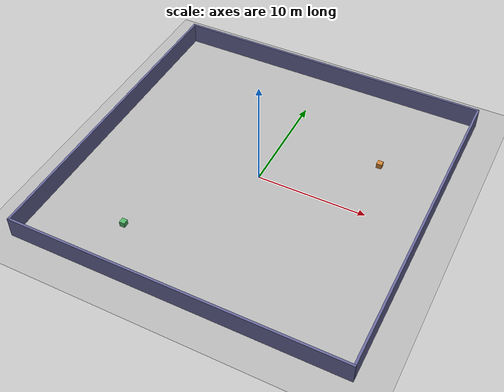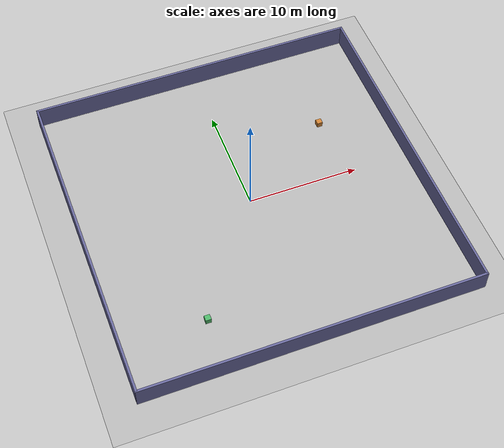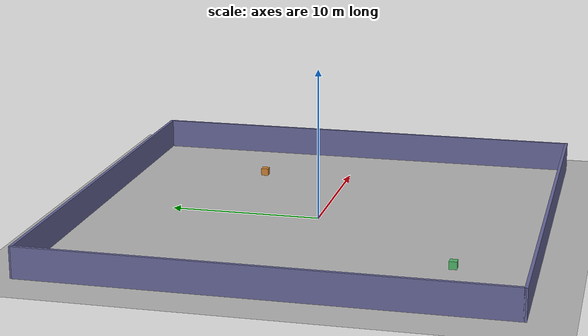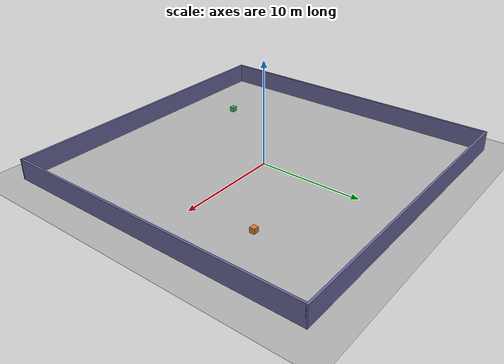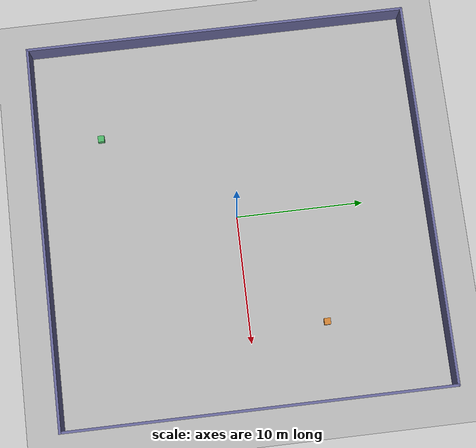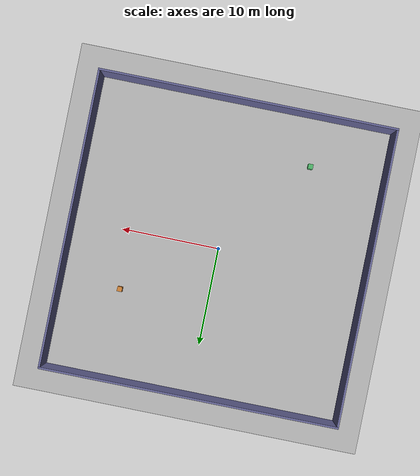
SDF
<?xml version="1.0" ?>
<sdf version='1.8'>
  <world name='arena_square'>

    <physics name='4ms' type='ignored'>
      <max_step_size>0.004</max_step_size>
      <real_time_factor>1</real_time_factor>
    </physics>

    <plugin filename="ignition-gazebo-physics-system"
            name="ignition::gazebo::systems::Physics"/>
    <plugin filename="ignition-gazebo-user-commands-system"
            name="ignition::gazebo::systems::UserCommands"/>
    <plugin filename="ignition-gazebo-scene-broadcaster-system"
            name="ignition::gazebo::systems::SceneBroadcaster"/>
    <plugin filename="ignition-gazebo-sensors-system"
            name="ignition::gazebo::systems::Sensors">
      <render_engine>ogre2</render_engine>
    </plugin>
    <plugin filename="ignition-gazebo-contact-system"
            name="ignition::gazebo::systems::Contact"/>
    <plugin filename="ignition-gazebo-imu-system"
            name="ignition::gazebo::systems::Imu"/>

    <light name='sun' type='directional'>
      <pose>0 0 10 0 0 0</pose>
      <cast_shadows>true</cast_shadows>
      <intensity>1</intensity>
      <direction>-0.5 0.1 -0.9</direction>
      <diffuse>0.8 0.8 0.8 1</diffuse>
      <specular>0.2 0.2 0.2 1</specular>
    </light>

    <!-- Ground plane -->
    <model name='ground_plane'>
      <static>true</static>
      <link name='link'>
        <collision name='collision'>
          <geometry><plane><normal>0 0 1</normal><size>100 100</size></plane></geometry>
        </collision>
        <visual name='visual'>
          <geometry><plane><normal>0 0 1</normal><size>100 100</size></plane></geometry>
          <material>
            <ambient>0.7 0.7 0.7 1</ambient>
            <diffuse>0.7 0.7 0.7 1</diffuse>
          </material>
        </visual>
      </link>
    </model>

    <model name='as_wall_north'><static>true</static><link name='link'>
      <pose>0 15.0 1 0 0 0</pose>
      <collision name='c'><geometry><box><size>30.2 0.2 2</size></box></geometry></collision>
      <visual name='v'><geometry><box><size>30.2 0.2 2</size></box></geometry>
        <material><ambient>0.4 0.4 0.6 1</ambient><diffuse>0.4 0.4 0.6 1</diffuse></material></visual>
    </link></model>
    <model name='as_wall_south'><static>true</static><link name='link'>
      <pose>0 -15.0 1 0 0 0</pose>
      <collision name='c'><geometry><box><size>30.2 0.2 2</size></box></geometry></collision>
      <visual name='v'><geometry><box><size>30.2 0.2 2</size></box></geometry>
        <material><ambient>0.4 0.4 0.6 1</ambient><diffuse>0.4 0.4 0.6 1</diffuse></material></visual>
    </link></model>
    <model name='as_wall_east'><static>true</static><link name='link'>
      <pose>15.0 0 1 0 0 0</pose>
      <collision name='c'><geometry><box><size>0.2 30.0 2</size></box></geometry></collision>
      <visual name='v'><geometry><box><size>0.2 30.0 2</size></box></geometry>
        <material><ambient>0.4 0.4 0.6 1</ambient><diffuse>0.4 0.4 0.6 1</diffuse></material></visual>
    </link></model>
    <model name='as_wall_west'><static>true</static><link name='link'>
      <pose>-15.0 0 1 0 0 0</pose>
      <collision name='c'><geometry><box><size>0.2 30.0 2</size></box></geometry></collision>
      <visual name='v'><geometry><box><size>0.2 30.0 2</size></box></geometry>
        <material><ambient>0.4 0.4 0.6 1</ambient><diffuse>0.4 0.4 0.6 1</diffuse></material></visual>
    </link></model>
    <model name='as_marker_a'><static>true</static><link name='link'>
      <pose>9.0 6.0 0.25 0 0 0</pose>
      <collision name='c'><geometry><box><size>0.5 0.5 0.5</size></box></geometry></collision>
      <visual name='v'><geometry><box><size>0.5 0.5 0.5</size></box></geometry>
        <material><ambient>0.8 0.5 0.2 1</ambient><diffuse>0.8 0.5 0.2 1</diffuse></material></visual>
    </link></model>
    <model name='as_marker_b'><static>true</static><link name='link'>
      <pose>-7.5 -10.0 0.25 0 0 0</pose>
      <collision name='c'><geometry><box><size>0.5 0.5 0.5</size></box></geometry></collision>
      <visual name='v'><geometry><box><size>0.5 0.5 0.5</size></box></geometry>
        <material><ambient>0.3 0.7 0.4 1</ambient><diffuse>0.3 0.7 0.4 1</diffuse></material></visual>
    </link></model>

    <!-- Overview camera -->
    <model name='world_monitor_cam'>
      <static>true</static>
      <pose>0 0 28 0 1.5708 0</pose>
      <link name='link'>
        <sensor name='monitor_camera' type='camera'>
          <always_on>true</always_on>
          <update_rate>10</update_rate>
          <topic>world_monitor/image_raw</topic>
          <camera>
            <horizontal_fov>1.6</horizontal_fov>
            <image><width>960</width><height>540</height><format>R8G8B8</format></image>
            <clip><near>0.05</near><far>40.0</far></clip>
          </camera>
        </sensor>
      </link>
    </model>

  </world>
</sdf>
